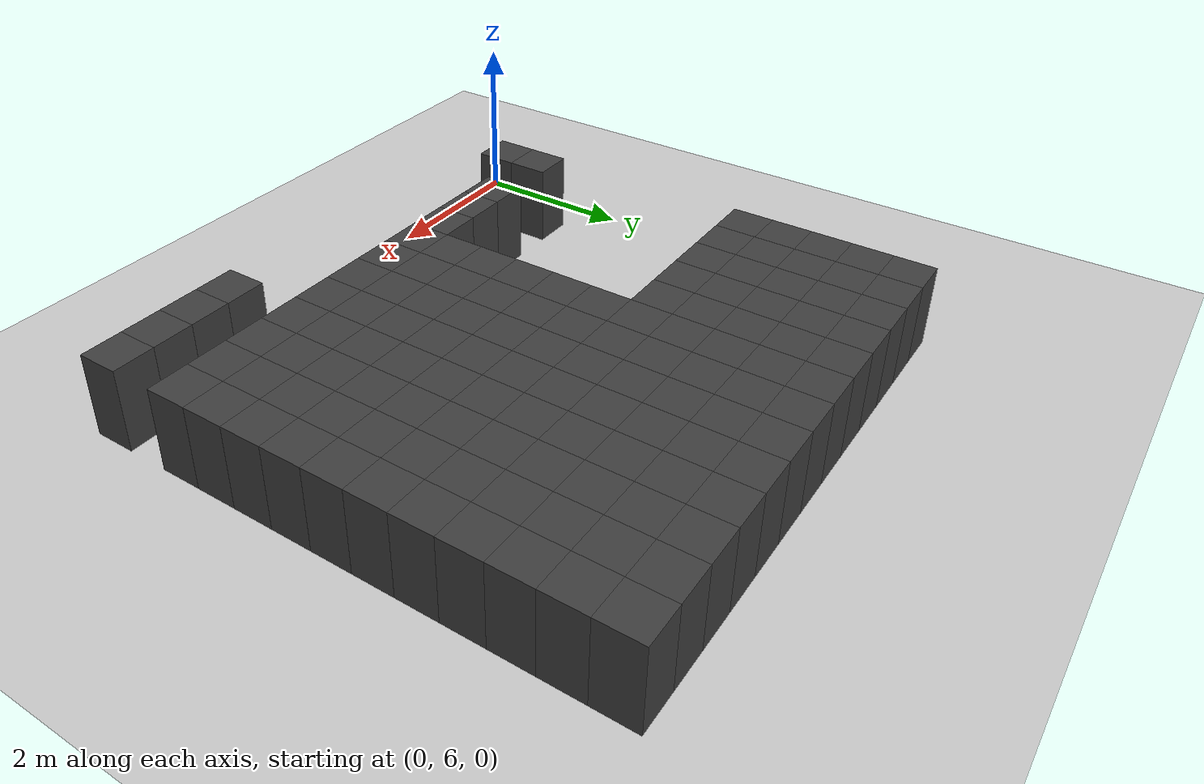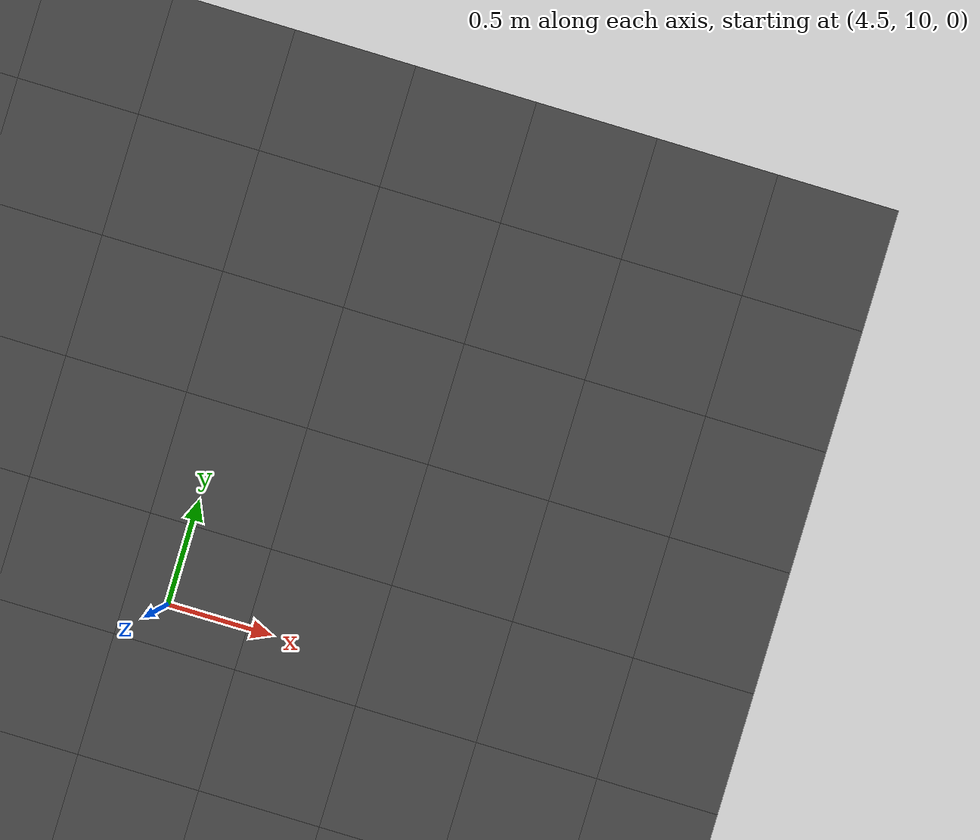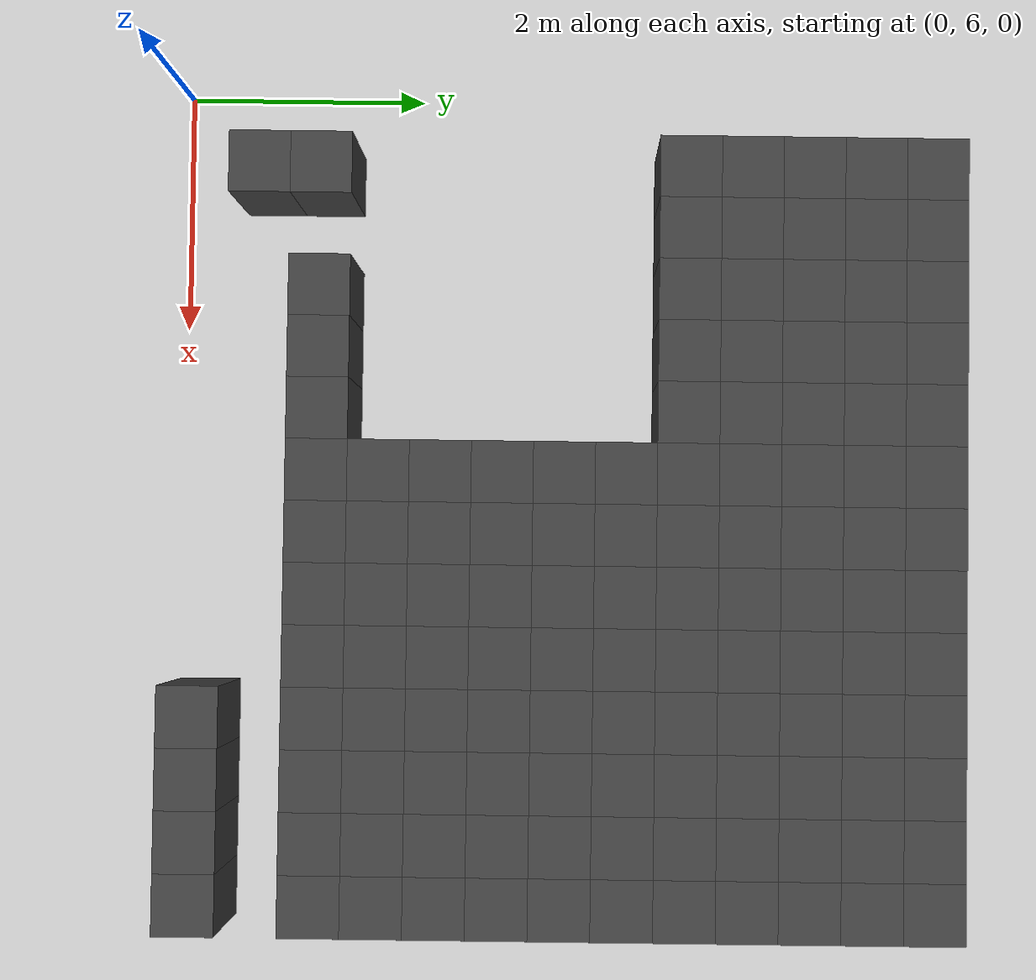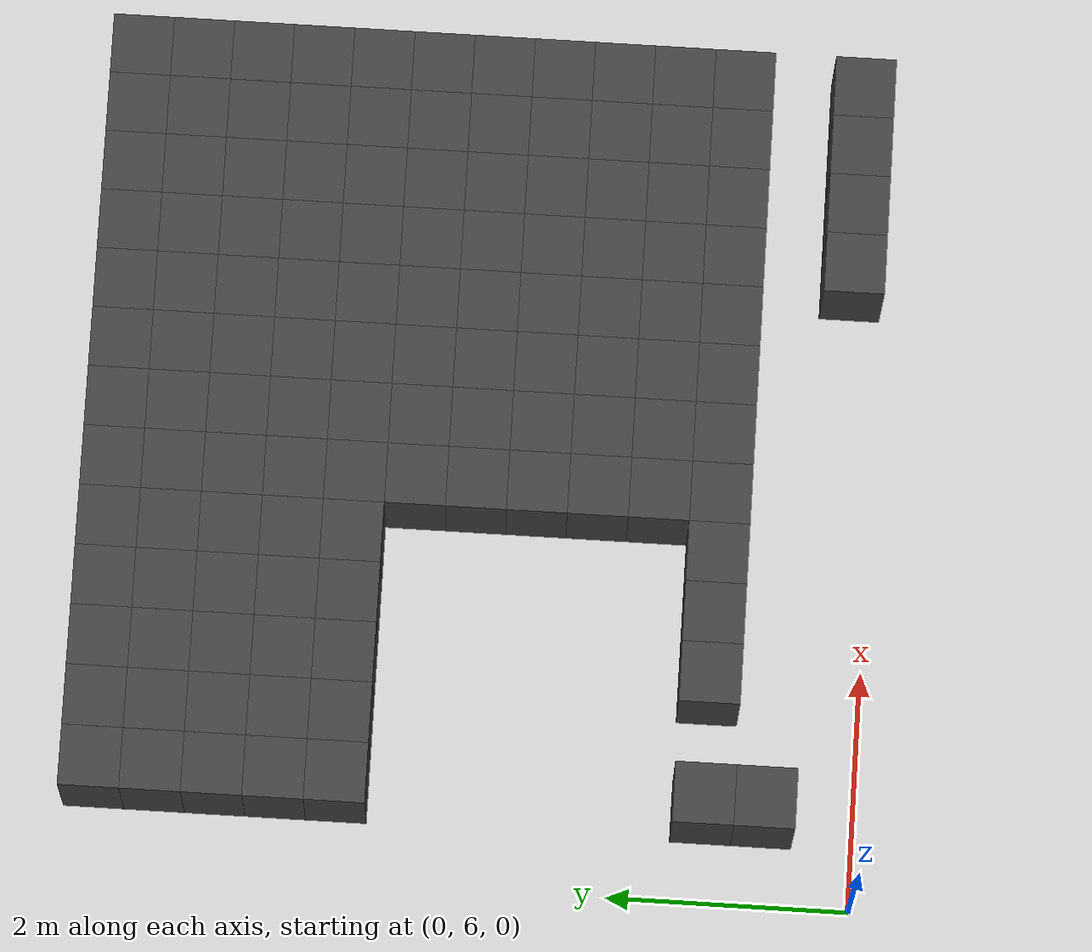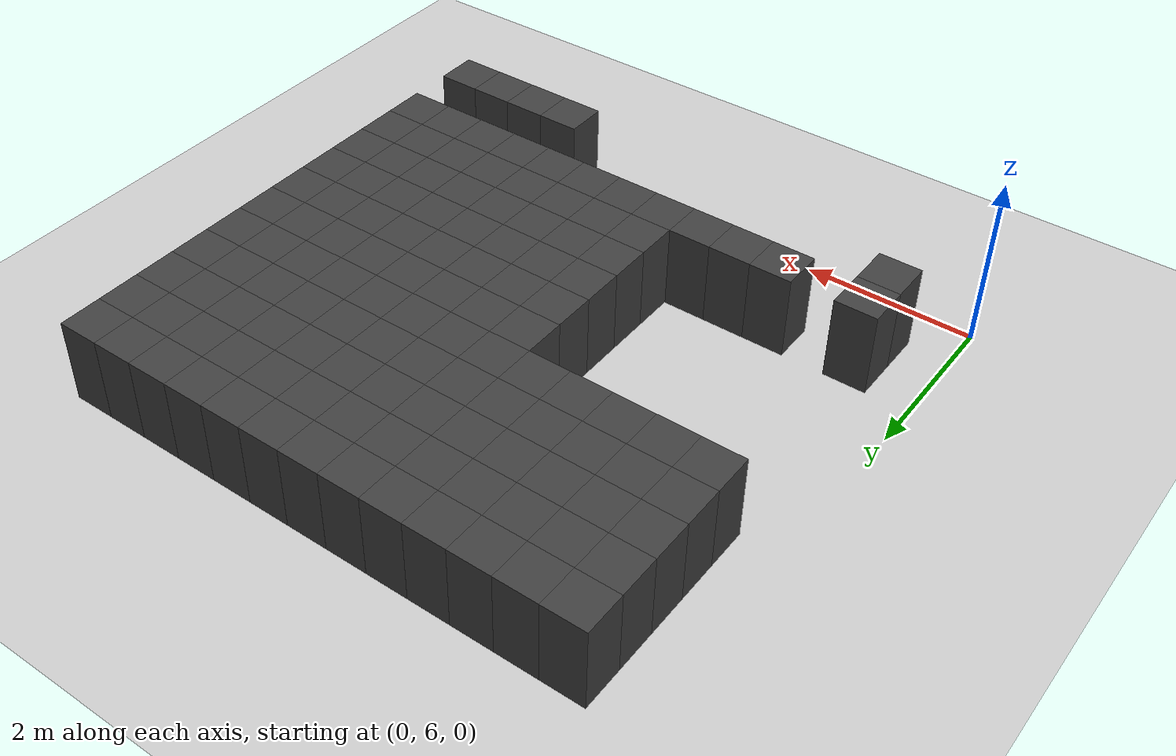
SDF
<sdf version="1.7">
 <world name="map_14510">
  <model name="ground_plane">
   <static>true</static>
   <link name="link">
    <collision name="collision">
     <geometry><plane><normal>0 0 1</normal><size>200 200</size></plane></geometry>
    </collision>
    <visual name="visual">
     <geometry><plane><normal>0 0 1</normal><size>200 200</size></plane></geometry>
     <material><ambient>0.8 0.8 0.8 1</ambient><diffuse>0.8 0.8 0.8 1</diffuse></material>
    </visual>
   </link>
  </model>
  <model name="maze_environment">
   <static>true</static>
   <link name="wall_26">
    <pose>0.750 12.250 0.500 0 0 0</pose>
    <collision name="col"><geometry><box><size>0.5 0.5 1.0</size></box></geometry></collision>
    <visual name="vis">
     <geometry><box><size>0.5 0.5 1.0</size></box></geometry>
     <material><ambient>0.15 0.15 0.15 1</ambient><diffuse>0.25 0.25 0.25 1</diffuse></material>
    </visual>
   </link>
   <link name="wall_27">
    <pose>1.250 12.250 0.500 0 0 0</pose>
    <collision name="col"><geometry><box><size>0.5 0.5 1.0</size></box></geometry></collision>
    <visual name="vis">
     <geometry><box><size>0.5 0.5 1.0</size></box></geometry>
     <material><ambient>0.15 0.15 0.15 1</ambient><diffuse>0.25 0.25 0.25 1</diffuse></material>
    </visual>
   </link>
   <link name="wall_28">
    <pose>1.750 12.250 0.500 0 0 0</pose>
    <collision name="col"><geometry><box><size>0.5 0.5 1.0</size></box></geometry></collision>
    <visual name="vis">
     <geometry><box><size>0.5 0.5 1.0</size></box></geometry>
     <material><ambient>0.15 0.15 0.15 1</ambient><diffuse>0.25 0.25 0.25 1</diffuse></material>
    </visual>
   </link>
   <link name="wall_29">
    <pose>2.250 12.250 0.500 0 0 0</pose>
    <collision name="col"><geometry><box><size>0.5 0.5 1.0</size></box></geometry></collision>
    <visual name="vis">
     <geometry><box><size>0.5 0.5 1.0</size></box></geometry>
     <material><ambient>0.15 0.15 0.15 1</ambient><diffuse>0.25 0.25 0.25 1</diffuse></material>
    </visual>
   </link>
   <link name="wall_30">
    <pose>2.750 12.250 0.500 0 0 0</pose>
    <collision name="col"><geometry><box><size>0.5 0.5 1.0</size></box></geometry></collision>
    <visual name="vis">
     <geometry><box><size>0.5 0.5 1.0</size></box></geometry>
     <material><ambient>0.15 0.15 0.15 1</ambient><diffuse>0.25 0.25 0.25 1</diffuse></material>
    </visual>
   </link>
   <link name="wall_31">
    <pose>3.250 12.250 0.500 0 0 0</pose>
    <collision name="col"><geometry><box><size>0.5 0.5 1.0</size></box></geometry></collision>
    <visual name="vis">
     <geometry><box><size>0.5 0.5 1.0</size></box></geometry>
     <material><ambient>0.15 0.15 0.15 1</ambient><diffuse>0.25 0.25 0.25 1</diffuse></material>
    </visual>
   </link>
   <link name="wall_32">
    <pose>3.750 12.250 0.500 0 0 0</pose>
    <collision name="col"><geometry><box><size>0.5 0.5 1.0</size></box></geometry></collision>
    <visual name="vis">
     <geometry><box><size>0.5 0.5 1.0</size></box></geometry>
     <material><ambient>0.15 0.15 0.15 1</ambient><diffuse>0.25 0.25 0.25 1</diffuse></material>
    </visual>
   </link>
   <link name="wall_33">
    <pose>4.250 12.250 0.500 0 0 0</pose>
    <collision name="col"><geometry><box><size>0.5 0.5 1.0</size></box></geometry></collision>
    <visual name="vis">
     <geometry><box><size>0.5 0.5 1.0</size></box></geometry>
     <material><ambient>0.15 0.15 0.15 1</ambient><diffuse>0.25 0.25 0.25 1</diffuse></material>
    </visual>
   </link>
   <link name="wall_34">
    <pose>4.750 12.250 0.500 0 0 0</pose>
    <collision name="col"><geometry><box><size>0.5 0.5 1.0</size></box></geometry></collision>
    <visual name="vis">
     <geometry><box><size>0.5 0.5 1.0</size></box></geometry>
     <material><ambient>0.15 0.15 0.15 1</ambient><diffuse>0.25 0.25 0.25 1</diffuse></material>
    </visual>
   </link>
   <link name="wall_35">
    <pose>5.250 12.250 0.500 0 0 0</pose>
    <collision name="col"><geometry><box><size>0.5 0.5 1.0</size></box></geometry></collision>
    <visual name="vis">
     <geometry><box><size>0.5 0.5 1.0</size></box></geometry>
     <material><ambient>0.15 0.15 0.15 1</ambient><diffuse>0.25 0.25 0.25 1</diffuse></material>
    </visual>
   </link>
   <link name="wall_36">
    <pose>5.750 12.250 0.500 0 0 0</pose>
    <collision name="col"><geometry><box><size>0.5 0.5 1.0</size></box></geometry></collision>
    <visual name="vis">
     <geometry><box><size>0.5 0.5 1.0</size></box></geometry>
     <material><ambient>0.15 0.15 0.15 1</ambient><diffuse>0.25 0.25 0.25 1</diffuse></material>
    </visual>
   </link>
   <link name="wall_37">
    <pose>6.250 12.250 0.500 0 0 0</pose>
    <collision name="col"><geometry><box><size>0.5 0.5 1.0</size></box></geometry></collision>
    <visual name="vis">
     <geometry><box><size>0.5 0.5 1.0</size></box></geometry>
     <material><ambient>0.15 0.15 0.15 1</ambient><diffuse>0.25 0.25 0.25 1</diffuse></material>
    </visual>
   </link>
   <link name="wall_38">
    <pose>6.750 12.250 0.500 0 0 0</pose>
    <collision name="col"><geometry><box><size>0.5 0.5 1.0</size></box></geometry></collision>
    <visual name="vis">
     <geometry><box><size>0.5 0.5 1.0</size></box></geometry>
     <material><ambient>0.15 0.15 0.15 1</ambient><diffuse>0.25 0.25 0.25 1</diffuse></material>
    </visual>
   </link>
   <link name="wall_73">
    <pose>0.750 11.750 0.500 0 0 0</pose>
    <collision name="col"><geometry><box><size>0.5 0.5 1.0</size></box></geometry></collision>
    <visual name="vis">
     <geometry><box><size>0.5 0.5 1.0</size></box></geometry>
     <material><ambient>0.15 0.15 0.15 1</ambient><diffuse>0.25 0.25 0.25 1</diffuse></material>
    </visual>
   </link>
   <link name="wall_74">
    <pose>1.250 11.750 0.500 0 0 0</pose>
    <collision name="col"><geometry><box><size>0.5 0.5 1.0</size></box></geometry></collision>
    <visual name="vis">
     <geometry><box><size>0.5 0.5 1.0</size></box></geometry>
     <material><ambient>0.15 0.15 0.15 1</ambient><diffuse>0.25 0.25 0.25 1</diffuse></material>
    </visual>
   </link>
   <link name="wall_75">
    <pose>1.750 11.750 0.500 0 0 0</pose>
    <collision name="col"><geometry><box><size>0.5 0.5 1.0</size></box></geometry></collision>
    <visual name="vis">
     <geometry><box><size>0.5 0.5 1.0</size></box></geometry>
     <material><ambient>0.15 0.15 0.15 1</ambient><diffuse>0.25 0.25 0.25 1</diffuse></material>
    </visual>
   </link>
   <link name="wall_76">
    <pose>2.250 11.750 0.500 0 0 0</pose>
    <collision name="col"><geometry><box><size>0.5 0.5 1.0</size></box></geometry></collision>
    <visual name="vis">
     <geometry><box><size>0.5 0.5 1.0</size></box></geometry>
     <material><ambient>0.15 0.15 0.15 1</ambient><diffuse>0.25 0.25 0.25 1</diffuse></material>
    </visual>
   </link>
   <link name="wall_77">
    <pose>2.750 11.750 0.500 0 0 0</pose>
    <collision name="col"><geometry><box><size>0.5 0.5 1.0</size></box></geometry></collision>
    <visual name="vis">
     <geometry><box><size>0.5 0.5 1.0</size></box></geometry>
     <material><ambient>0.15 0.15 0.15 1</ambient><diffuse>0.25 0.25 0.25 1</diffuse></material>
    </visual>
   </link>
   <link name="wall_78">
    <pose>3.250 11.750 0.500 0 0 0</pose>
    <collision name="col"><geometry><box><size>0.5 0.5 1.0</size></box></geometry></collision>
    <visual name="vis">
     <geometry><box><size>0.5 0.5 1.0</size></box></geometry>
     <material><ambient>0.15 0.15 0.15 1</ambient><diffuse>0.25 0.25 0.25 1</diffuse></material>
    </visual>
   </link>
   <link name="wall_79">
    <pose>3.750 11.750 0.500 0 0 0</pose>
    <collision name="col"><geometry><box><size>0.5 0.5 1.0</size></box></geometry></collision>
    <visual name="vis">
     <geometry><box><size>0.5 0.5 1.0</size></box></geometry>
     <material><ambient>0.15 0.15 0.15 1</ambient><diffuse>0.25 0.25 0.25 1</diffuse></material>
    </visual>
   </link>
   <link name="wall_80">
    <pose>4.250 11.750 0.500 0 0 0</pose>
    <collision name="col"><geometry><box><size>0.5 0.5 1.0</size></box></geometry></collision>
    <visual name="vis">
     <geometry><box><size>0.5 0.5 1.0</size></box></geometry>
     <material><ambient>0.15 0.15 0.15 1</ambient><diffuse>0.25 0.25 0.25 1</diffuse></material>
    </visual>
   </link>
   <link name="wall_81">
    <pose>4.750 11.750 0.500 0 0 0</pose>
    <collision name="col"><geometry><box><size>0.5 0.5 1.0</size></box></geometry></collision>
    <visual name="vis">
     <geometry><box><size>0.5 0.5 1.0</size></box></geometry>
     <material><ambient>0.15 0.15 0.15 1</ambient><diffuse>0.25 0.25 0.25 1</diffuse></material>
    </visual>
   </link>
   <link name="wall_82">
    <pose>5.250 11.750 0.500 0 0 0</pose>
    <collision name="col"><geometry><box><size>0.5 0.5 1.0</size></box></geometry></collision>
    <visual name="vis">
     <geometry><box><size>0.5 0.5 1.0</size></box></geometry>
     <material><ambient>0.15 0.15 0.15 1</ambient><diffuse>0.25 0.25 0.25 1</diffuse></material>
    </visual>
   </link>
   <link name="wall_83">
    <pose>5.750 11.750 0.500 0 0 0</pose>
    <collision name="col"><geometry><box><size>0.5 0.5 1.0</size></box></geometry></collision>
    <visual name="vis">
     <geometry><box><size>0.5 0.5 1.0</size></box></geometry>
     <material><ambient>0.15 0.15 0.15 1</ambient><diffuse>0.25 0.25 0.25 1</diffuse></material>
    </visual>
   </link>
   <link name="wall_84">
    <pose>6.250 11.750 0.500 0 0 0</pose>
    <collision name="col"><geometry><box><size>0.5 0.5 1.0</size></box></geometry></collision>
    <visual name="vis">
     <geometry><box><size>0.5 0.5 1.0</size></box></geometry>
     <material><ambient>0.15 0.15 0.15 1</ambient><diffuse>0.25 0.25 0.25 1</diffuse></material>
    </visual>
   </link>
   <link name="wall_85">
    <pose>6.750 11.750 0.500 0 0 0</pose>
    <collision name="col"><geometry><box><size>0.5 0.5 1.0</size></box></geometry></collision>
    <visual name="vis">
     <geometry><box><size>0.5 0.5 1.0</size></box></geometry>
     <material><ambient>0.15 0.15 0.15 1</ambient><diffuse>0.25 0.25 0.25 1</diffuse></material>
    </visual>
   </link>
   <link name="wall_120">
    <pose>0.750 11.250 0.500 0 0 0</pose>
    <collision name="col"><geometry><box><size>0.5 0.5 1.0</size></box></geometry></collision>
    <visual name="vis">
     <geometry><box><size>0.5 0.5 1.0</size></box></geometry>
     <material><ambient>0.15 0.15 0.15 1</ambient><diffuse>0.25 0.25 0.25 1</diffuse></material>
    </visual>
   </link>
   <link name="wall_121">
    <pose>1.250 11.250 0.500 0 0 0</pose>
    <collision name="col"><geometry><box><size>0.5 0.5 1.0</size></box></geometry></collision>
    <visual name="vis">
     <geometry><box><size>0.5 0.5 1.0</size></box></geometry>
     <material><ambient>0.15 0.15 0.15 1</ambient><diffuse>0.25 0.25 0.25 1</diffuse></material>
    </visual>
   </link>
   <link name="wall_122">
    <pose>1.750 11.250 0.500 0 0 0</pose>
    <collision name="col"><geometry><box><size>0.5 0.5 1.0</size></box></geometry></collision>
    <visual name="vis">
     <geometry><box><size>0.5 0.5 1.0</size></box></geometry>
     <material><ambient>0.15 0.15 0.15 1</ambient><diffuse>0.25 0.25 0.25 1</diffuse></material>
    </visual>
   </link>
   <link name="wall_123">
    <pose>2.250 11.250 0.500 0 0 0</pose>
    <collision name="col"><geometry><box><size>0.5 0.5 1.0</size></box></geometry></collision>
    <visual name="vis">
     <geometry><box><size>0.5 0.5 1.0</size></box></geometry>
     <material><ambient>0.15 0.15 0.15 1</ambient><diffuse>0.25 0.25 0.25 1</diffuse></material>
    </visual>
   </link>
   <link name="wall_124">
    <pose>2.750 11.250 0.500 0 0 0</pose>
    <collision name="col"><geometry><box><size>0.5 0.5 1.0</size></box></geometry></collision>
    <visual name="vis">
     <geometry><box><size>0.5 0.5 1.0</size></box></geometry>
     <material><ambient>0.15 0.15 0.15 1</ambient><diffuse>0.25 0.25 0.25 1</diffuse></material>
    </visual>
   </link>
   <link name="wall_125">
    <pose>3.250 11.250 0.500 0 0 0</pose>
    <collision name="col"><geometry><box><size>0.5 0.5 1.0</size></box></geometry></collision>
    <visual name="vis">
     <geometry><box><size>0.5 0.5 1.0</size></box></geometry>
     <material><ambient>0.15 0.15 0.15 1</ambient><diffuse>0.25 0.25 0.25 1</diffuse></material>
    </visual>
   </link>
   <link name="wall_126">
    <pose>3.750 11.250 0.500 0 0 0</pose>
    <collision name="col"><geometry><box><size>0.5 0.5 1.0</size></box></geometry></collision>
    <visual name="vis">
     <geometry><box><size>0.5 0.5 1.0</size></box></geometry>
     <material><ambient>0.15 0.15 0.15 1</ambient><diffuse>0.25 0.25 0.25 1</diffuse></material>
    </visual>
   </link>
   <link name="wall_127">
    <pose>4.250 11.250 0.500 0 0 0</pose>
    <collision name="col"><geometry><box><size>0.5 0.5 1.0</size></box></geometry></collision>
    <visual name="vis">
     <geometry><box><size>0.5 0.5 1.0</size></box></geometry>
     <material><ambient>0.15 0.15 0.15 1</ambient><diffuse>0.25 0.25 0.25 1</diffuse></material>
    </visual>
   </link>
   <link name="wall_128">
    <pose>4.750 11.250 0.500 0 0 0</pose>
    <collision name="col"><geometry><box><size>0.5 0.5 1.0</size></box></geometry></collision>
    <visual name="vis">
     <geometry><box><size>0.5 0.5 1.0</size></box></geometry>
     <material><ambient>0.15 0.15 0.15 1</ambient><diffuse>0.25 0.25 0.25 1</diffuse></material>
    </visual>
   </link>
   <link name="wall_129">
    <pose>5.250 11.250 0.500 0 0 0</pose>
    <collision name="col"><geometry><box><size>0.5 0.5 1.0</size></box></geometry></collision>
    <visual name="vis">
     <geometry><box><size>0.5 0.5 1.0</size></box></geometry>
     <material><ambient>0.15 0.15 0.15 1</ambient><diffuse>0.25 0.25 0.25 1</diffuse></material>
    </visual>
   </link>
   <link name="wall_130">
    <pose>5.750 11.250 0.500 0 0 0</pose>
    <collision name="col"><geometry><box><size>0.5 0.5 1.0</size></box></geometry></collision>
    <visual name="vis">
     <geometry><box><size>0.5 0.5 1.0</size></box></geometry>
     <material><ambient>0.15 0.15 0.15 1</ambient><diffuse>0.25 0.25 0.25 1</diffuse></material>
    </visual>
   </link>
   <link name="wall_131">
    <pose>6.250 11.250 0.500 0 0 0</pose>
    <collision name="col"><geometry><box><size>0.5 0.5 1.0</size></box></geometry></collision>
    <visual name="vis">
     <geometry><box><size>0.5 0.5 1.0</size></box></geometry>
     <material><ambient>0.15 0.15 0.15 1</ambient><diffuse>0.25 0.25 0.25 1</diffuse></material>
    </visual>
   </link>
   <link name="wall_132">
    <pose>6.750 11.250 0.500 0 0 0</pose>
    <collision name="col"><geometry><box><size>0.5 0.5 1.0</size></box></geometry></collision>
    <visual name="vis">
     <geometry><box><size>0.5 0.5 1.0</size></box></geometry>
     <material><ambient>0.15 0.15 0.15 1</ambient><diffuse>0.25 0.25 0.25 1</diffuse></material>
    </visual>
   </link>
   <link name="wall_157">
    <pose>0.750 10.750 0.500 0 0 0</pose>
    <collision name="col"><geometry><box><size>0.5 0.5 1.0</size></box></geometry></collision>
    <visual name="vis">
     <geometry><box><size>0.5 0.5 1.0</size></box></geometry>
     <material><ambient>0.15 0.15 0.15 1</ambient><diffuse>0.25 0.25 0.25 1</diffuse></material>
    </visual>
   </link>
   <link name="wall_158">
    <pose>1.250 10.750 0.500 0 0 0</pose>
    <collision name="col"><geometry><box><size>0.5 0.5 1.0</size></box></geometry></collision>
    <visual name="vis">
     <geometry><box><size>0.5 0.5 1.0</size></box></geometry>
     <material><ambient>0.15 0.15 0.15 1</ambient><diffuse>0.25 0.25 0.25 1</diffuse></material>
    </visual>
   </link>
   <link name="wall_159">
    <pose>1.750 10.750 0.500 0 0 0</pose>
    <collision name="col"><geometry><box><size>0.5 0.5 1.0</size></box></geometry></collision>
    <visual name="vis">
     <geometry><box><size>0.5 0.5 1.0</size></box></geometry>
     <material><ambient>0.15 0.15 0.15 1</ambient><diffuse>0.25 0.25 0.25 1</diffuse></material>
    </visual>
   </link>
   <link name="wall_160">
    <pose>2.250 10.750 0.500 0 0 0</pose>
    <collision name="col"><geometry><box><size>0.5 0.5 1.0</size></box></geometry></collision>
    <visual name="vis">
     <geometry><box><size>0.5 0.5 1.0</size></box></geometry>
     <material><ambient>0.15 0.15 0.15 1</ambient><diffuse>0.25 0.25 0.25 1</diffuse></material>
    </visual>
   </link>
   <link name="wall_161">
    <pose>2.750 10.750 0.500 0 0 0</pose>
    <collision name="col"><geometry><box><size>0.5 0.5 1.0</size></box></geometry></collision>
    <visual name="vis">
     <geometry><box><size>0.5 0.5 1.0</size></box></geometry>
     <material><ambient>0.15 0.15 0.15 1</ambient><diffuse>0.25 0.25 0.25 1</diffuse></material>
    </visual>
   </link>
   <link name="wall_162">
    <pose>3.250 10.750 0.500 0 0 0</pose>
    <collision name="col"><geometry><box><size>0.5 0.5 1.0</size></box></geometry></collision>
    <visual name="vis">
     <geometry><box><size>0.5 0.5 1.0</size></box></geometry>
     <material><ambient>0.15 0.15 0.15 1</ambient><diffuse>0.25 0.25 0.25 1</diffuse></material>
    </visual>
   </link>
   <link name="wall_163">
    <pose>3.750 10.750 0.500 0 0 0</pose>
    <collision name="col"><geometry><box><size>0.5 0.5 1.0</size></box></geometry></collision>
    <visual name="vis">
     <geometry><box><size>0.5 0.5 1.0</size></box></geometry>
     <material><ambient>0.15 0.15 0.15 1</ambient><diffuse>0.25 0.25 0.25 1</diffuse></material>
    </visual>
   </link>
   <link name="wall_164">
    <pose>4.250 10.750 0.500 0 0 0</pose>
    <collision name="col"><geometry><box><size>0.5 0.5 1.0</size></box></geometry></collision>
    <visual name="vis">
     <geometry><box><size>0.5 0.5 1.0</size></box></geometry>
     <material><ambient>0.15 0.15 0.15 1</ambient><diffuse>0.25 0.25 0.25 1</diffuse></material>
    </visual>
   </link>
   <link name="wall_165">
    <pose>4.750 10.750 0.500 0 0 0</pose>
    <collision name="col"><geometry><box><size>0.5 0.5 1.0</size></box></geometry></collision>
    <visual name="vis">
     <geometry><box><size>0.5 0.5 1.0</size></box></geometry>
     <material><ambient>0.15 0.15 0.15 1</ambient><diffuse>0.25 0.25 0.25 1</diffuse></material>
    </visual>
   </link>
   <link name="wall_166">
    <pose>5.250 10.750 0.500 0 0 0</pose>
    <collision name="col"><geometry><box><size>0.5 0.5 1.0</size></box></geometry></collision>
    <visual name="vis">
     <geometry><box><size>0.5 0.5 1.0</size></box></geometry>
     <material><ambient>0.15 0.15 0.15 1</ambient><diffuse>0.25 0.25 0.25 1</diffuse></material>
    </visual>
   </link>
   <link name="wall_167">
    <pose>5.750 10.750 0.500 0 0 0</pose>
    <collision name="col"><geometry><box><size>0.5 0.5 1.0</size></box></geometry></collision>
    <visual name="vis">
     <geometry><box><size>0.5 0.5 1.0</size></box></geometry>
     <material><ambient>0.15 0.15 0.15 1</ambient><diffuse>0.25 0.25 0.25 1</diffuse></material>
    </visual>
   </link>
   <link name="wall_168">
    <pose>6.250 10.750 0.500 0 0 0</pose>
    <collision name="col"><geometry><box><size>0.5 0.5 1.0</size></box></geometry></collision>
    <visual name="vis">
     <geometry><box><size>0.5 0.5 1.0</size></box></geometry>
     <material><ambient>0.15 0.15 0.15 1</ambient><diffuse>0.25 0.25 0.25 1</diffuse></material>
    </visual>
   </link>
   <link name="wall_169">
    <pose>6.750 10.750 0.500 0 0 0</pose>
    <collision name="col"><geometry><box><size>0.5 0.5 1.0</size></box></geometry></collision>
    <visual name="vis">
     <geometry><box><size>0.5 0.5 1.0</size></box></geometry>
     <material><ambient>0.15 0.15 0.15 1</ambient><diffuse>0.25 0.25 0.25 1</diffuse></material>
    </visual>
   </link>
   <link name="wall_196">
    <pose>0.750 10.250 0.500 0 0 0</pose>
    <collision name="col"><geometry><box><size>0.5 0.5 1.0</size></box></geometry></collision>
    <visual name="vis">
     <geometry><box><size>0.5 0.5 1.0</size></box></geometry>
     <material><ambient>0.15 0.15 0.15 1</ambient><diffuse>0.25 0.25 0.25 1</diffuse></material>
    </visual>
   </link>
   <link name="wall_197">
    <pose>1.250 10.250 0.500 0 0 0</pose>
    <collision name="col"><geometry><box><size>0.5 0.5 1.0</size></box></geometry></collision>
    <visual name="vis">
     <geometry><box><size>0.5 0.5 1.0</size></box></geometry>
     <material><ambient>0.15 0.15 0.15 1</ambient><diffuse>0.25 0.25 0.25 1</diffuse></material>
    </visual>
   </link>
   <link name="wall_198">
    <pose>1.750 10.250 0.500 0 0 0</pose>
    <collision name="col"><geometry><box><size>0.5 0.5 1.0</size></box></geometry></collision>
    <visual name="vis">
     <geometry><box><size>0.5 0.5 1.0</size></box></geometry>
     <material><ambient>0.15 0.15 0.15 1</ambient><diffuse>0.25 0.25 0.25 1</diffuse></material>
    </visual>
   </link>
   <link name="wall_199">
    <pose>2.250 10.250 0.500 0 0 0</pose>
    <collision name="col"><geometry><box><size>0.5 0.5 1.0</size></box></geometry></collision>
    <visual name="vis">
     <geometry><box><size>0.5 0.5 1.0</size></box></geometry>
     <material><ambient>0.15 0.15 0.15 1</ambient><diffuse>0.25 0.25 0.25 1</diffuse></material>
    </visual>
   </link>
   <link name="wall_200">
    <pose>2.750 10.250 0.500 0 0 0</pose>
    <collision name="col"><geometry><box><size>0.5 0.5 1.0</size></box></geometry></collision>
    <visual name="vis">
     <geometry><box><size>0.5 0.5 1.0</size></box></geometry>
     <material><ambient>0.15 0.15 0.15 1</ambient><diffuse>0.25 0.25 0.25 1</diffuse></material>
    </visual>
   </link>
   <link name="wall_201">
    <pose>3.250 10.250 0.500 0 0 0</pose>
    <collision name="col"><geometry><box><size>0.5 0.5 1.0</size></box></geometry></collision>
    <visual name="vis">
     <geometry><box><size>0.5 0.5 1.0</size></box></geometry>
     <material><ambient>0.15 0.15 0.15 1</ambient><diffuse>0.25 0.25 0.25 1</diffuse></material>
    </visual>
   </link>
   <link name="wall_202">
    <pose>3.750 10.250 0.500 0 0 0</pose>
    <collision name="col"><geometry><box><size>0.5 0.5 1.0</size></box></geometry></collision>
    <visual name="vis">
     <geometry><box><size>0.5 0.5 1.0</size></box></geometry>
     <material><ambient>0.15 0.15 0.15 1</ambient><diffuse>0.25 0.25 0.25 1</diffuse></material>
    </visual>
   </link>
   <link name="wall_203">
    <pose>4.250 10.250 0.500 0 0 0</pose>
    <collision name="col"><geometry><box><size>0.5 0.5 1.0</size></box></geometry></collision>
    <visual name="vis">
     <geometry><box><size>0.5 0.5 1.0</size></box></geometry>
     <material><ambient>0.15 0.15 0.15 1</ambient><diffuse>0.25 0.25 0.25 1</diffuse></material>
    </visual>
   </link>
   <link name="wall_204">
    <pose>4.750 10.250 0.500 0 0 0</pose>
    <collision name="col"><geometry><box><size>0.5 0.5 1.0</size></box></geometry></collision>
    <visual name="vis">
     <geometry><box><size>0.5 0.5 1.0</size></box></geometry>
     <material><ambient>0.15 0.15 0.15 1</ambient><diffuse>0.25 0.25 0.25 1</diffuse></material>
    </visual>
   </link>
   <link name="wall_205">
    <pose>5.250 10.250 0.500 0 0 0</pose>
    <collision name="col"><geometry><box><size>0.5 0.5 1.0</size></box></geometry></collision>
    <visual name="vis">
     <geometry><box><size>0.5 0.5 1.0</size></box></geometry>
     <material><ambient>0.15 0.15 0.15 1</ambient><diffuse>0.25 0.25 0.25 1</diffuse></material>
    </visual>
   </link>
   <link name="wall_206">
    <pose>5.750 10.250 0.500 0 0 0</pose>
    <collision name="col"><geometry><box><size>0.5 0.5 1.0</size></box></geometry></collision>
    <visual name="vis">
     <geometry><box><size>0.5 0.5 1.0</size></box></geometry>
     <material><ambient>0.15 0.15 0.15 1</ambient><diffuse>0.25 0.25 0.25 1</diffuse></material>
    </visual>
   </link>
   <link name="wall_207">
    <pose>6.250 10.250 0.500 0 0 0</pose>
    <collision name="col"><geometry><box><size>0.5 0.5 1.0</size></box></geometry></collision>
    <visual name="vis">
     <geometry><box><size>0.5 0.5 1.0</size></box></geometry>
     <material><ambient>0.15 0.15 0.15 1</ambient><diffuse>0.25 0.25 0.25 1</diffuse></material>
    </visual>
   </link>
   <link name="wall_208">
    <pose>6.750 10.250 0.500 0 0 0</pose>
    <collision name="col"><geometry><box><size>0.5 0.5 1.0</size></box></geometry></collision>
    <visual name="vis">
     <geometry><box><size>0.5 0.5 1.0</size></box></geometry>
     <material><ambient>0.15 0.15 0.15 1</ambient><diffuse>0.25 0.25 0.25 1</diffuse></material>
    </visual>
   </link>
   <link name="wall_233">
    <pose>3.250 9.750 0.500 0 0 0</pose>
    <collision name="col"><geometry><box><size>0.5 0.5 1.0</size></box></geometry></collision>
    <visual name="vis">
     <geometry><box><size>0.5 0.5 1.0</size></box></geometry>
     <material><ambient>0.15 0.15 0.15 1</ambient><diffuse>0.25 0.25 0.25 1</diffuse></material>
    </visual>
   </link>
   <link name="wall_234">
    <pose>3.750 9.750 0.500 0 0 0</pose>
    <collision name="col"><geometry><box><size>0.5 0.5 1.0</size></box></geometry></collision>
    <visual name="vis">
     <geometry><box><size>0.5 0.5 1.0</size></box></geometry>
     <material><ambient>0.15 0.15 0.15 1</ambient><diffuse>0.25 0.25 0.25 1</diffuse></material>
    </visual>
   </link>
   <link name="wall_235">
    <pose>4.250 9.750 0.500 0 0 0</pose>
    <collision name="col"><geometry><box><size>0.5 0.5 1.0</size></box></geometry></collision>
    <visual name="vis">
     <geometry><box><size>0.5 0.5 1.0</size></box></geometry>
     <material><ambient>0.15 0.15 0.15 1</ambient><diffuse>0.25 0.25 0.25 1</diffuse></material>
    </visual>
   </link>
   <link name="wall_236">
    <pose>4.750 9.750 0.500 0 0 0</pose>
    <collision name="col"><geometry><box><size>0.5 0.5 1.0</size></box></geometry></collision>
    <visual name="vis">
     <geometry><box><size>0.5 0.5 1.0</size></box></geometry>
     <material><ambient>0.15 0.15 0.15 1</ambient><diffuse>0.25 0.25 0.25 1</diffuse></material>
    </visual>
   </link>
   <link name="wall_237">
    <pose>5.250 9.750 0.500 0 0 0</pose>
    <collision name="col"><geometry><box><size>0.5 0.5 1.0</size></box></geometry></collision>
    <visual name="vis">
     <geometry><box><size>0.5 0.5 1.0</size></box></geometry>
     <material><ambient>0.15 0.15 0.15 1</ambient><diffuse>0.25 0.25 0.25 1</diffuse></material>
    </visual>
   </link>
   <link name="wall_238">
    <pose>5.750 9.750 0.500 0 0 0</pose>
    <collision name="col"><geometry><box><size>0.5 0.5 1.0</size></box></geometry></collision>
    <visual name="vis">
     <geometry><box><size>0.5 0.5 1.0</size></box></geometry>
     <material><ambient>0.15 0.15 0.15 1</ambient><diffuse>0.25 0.25 0.25 1</diffuse></material>
    </visual>
   </link>
   <link name="wall_239">
    <pose>6.250 9.750 0.500 0 0 0</pose>
    <collision name="col"><geometry><box><size>0.5 0.5 1.0</size></box></geometry></collision>
    <visual name="vis">
     <geometry><box><size>0.5 0.5 1.0</size></box></geometry>
     <material><ambient>0.15 0.15 0.15 1</ambient><diffuse>0.25 0.25 0.25 1</diffuse></material>
    </visual>
   </link>
   <link name="wall_240">
    <pose>6.750 9.750 0.500 0 0 0</pose>
    <collision name="col"><geometry><box><size>0.5 0.5 1.0</size></box></geometry></collision>
    <visual name="vis">
     <geometry><box><size>0.5 0.5 1.0</size></box></geometry>
     <material><ambient>0.15 0.15 0.15 1</ambient><diffuse>0.25 0.25 0.25 1</diffuse></material>
    </visual>
   </link>
   <link name="wall_254">
    <pose>3.250 9.250 0.500 0 0 0</pose>
    <collision name="col"><geometry><box><size>0.5 0.5 1.0</size></box></geometry></collision>
    <visual name="vis">
     <geometry><box><size>0.5 0.5 1.0</size></box></geometry>
     <material><ambient>0.15 0.15 0.15 1</ambient><diffuse>0.25 0.25 0.25 1</diffuse></material>
    </visual>
   </link>
   <link name="wall_255">
    <pose>3.750 9.250 0.500 0 0 0</pose>
    <collision name="col"><geometry><box><size>0.5 0.5 1.0</size></box></geometry></collision>
    <visual name="vis">
     <geometry><box><size>0.5 0.5 1.0</size></box></geometry>
     <material><ambient>0.15 0.15 0.15 1</ambient><diffuse>0.25 0.25 0.25 1</diffuse></material>
    </visual>
   </link>
   <link name="wall_256">
    <pose>4.250 9.250 0.500 0 0 0</pose>
    <collision name="col"><geometry><box><size>0.5 0.5 1.0</size></box></geometry></collision>
    <visual name="vis">
     <geometry><box><size>0.5 0.5 1.0</size></box></geometry>
     <material><ambient>0.15 0.15 0.15 1</ambient><diffuse>0.25 0.25 0.25 1</diffuse></material>
    </visual>
   </link>
   <link name="wall_257">
    <pose>4.750 9.250 0.500 0 0 0</pose>
    <collision name="col"><geometry><box><size>0.5 0.5 1.0</size></box></geometry></collision>
    <visual name="vis">
     <geometry><box><size>0.5 0.5 1.0</size></box></geometry>
     <material><ambient>0.15 0.15 0.15 1</ambient><diffuse>0.25 0.25 0.25 1</diffuse></material>
    </visual>
   </link>
   <link name="wall_258">
    <pose>5.250 9.250 0.500 0 0 0</pose>
    <collision name="col"><geometry><box><size>0.5 0.5 1.0</size></box></geometry></collision>
    <visual name="vis">
     <geometry><box><size>0.5 0.5 1.0</size></box></geometry>
     <material><ambient>0.15 0.15 0.15 1</ambient><diffuse>0.25 0.25 0.25 1</diffuse></material>
    </visual>
   </link>
   <link name="wall_259">
    <pose>5.750 9.250 0.500 0 0 0</pose>
    <collision name="col"><geometry><box><size>0.5 0.5 1.0</size></box></geometry></collision>
    <visual name="vis">
     <geometry><box><size>0.5 0.5 1.0</size></box></geometry>
     <material><ambient>0.15 0.15 0.15 1</ambient><diffuse>0.25 0.25 0.25 1</diffuse></material>
    </visual>
   </link>
   <link name="wall_260">
    <pose>6.250 9.250 0.500 0 0 0</pose>
    <collision name="col"><geometry><box><size>0.5 0.5 1.0</size></box></geometry></collision>
    <visual name="vis">
     <geometry><box><size>0.5 0.5 1.0</size></box></geometry>
     <material><ambient>0.15 0.15 0.15 1</ambient><diffuse>0.25 0.25 0.25 1</diffuse></material>
    </visual>
   </link>
   <link name="wall_261">
    <pose>6.750 9.250 0.500 0 0 0</pose>
    <collision name="col"><geometry><box><size>0.5 0.5 1.0</size></box></geometry></collision>
    <visual name="vis">
     <geometry><box><size>0.5 0.5 1.0</size></box></geometry>
     <material><ambient>0.15 0.15 0.15 1</ambient><diffuse>0.25 0.25 0.25 1</diffuse></material>
    </visual>
   </link>
   <link name="wall_287">
    <pose>3.250 8.750 0.500 0 0 0</pose>
    <collision name="col"><geometry><box><size>0.5 0.5 1.0</size></box></geometry></collision>
    <visual name="vis">
     <geometry><box><size>0.5 0.5 1.0</size></box></geometry>
     <material><ambient>0.15 0.15 0.15 1</ambient><diffuse>0.25 0.25 0.25 1</diffuse></material>
    </visual>
   </link>
   <link name="wall_288">
    <pose>3.750 8.750 0.500 0 0 0</pose>
    <collision name="col"><geometry><box><size>0.5 0.5 1.0</size></box></geometry></collision>
    <visual name="vis">
     <geometry><box><size>0.5 0.5 1.0</size></box></geometry>
     <material><ambient>0.15 0.15 0.15 1</ambient><diffuse>0.25 0.25 0.25 1</diffuse></material>
    </visual>
   </link>
   <link name="wall_289">
    <pose>4.250 8.750 0.500 0 0 0</pose>
    <collision name="col"><geometry><box><size>0.5 0.5 1.0</size></box></geometry></collision>
    <visual name="vis">
     <geometry><box><size>0.5 0.5 1.0</size></box></geometry>
     <material><ambient>0.15 0.15 0.15 1</ambient><diffuse>0.25 0.25 0.25 1</diffuse></material>
    </visual>
   </link>
   <link name="wall_290">
    <pose>4.750 8.750 0.500 0 0 0</pose>
    <collision name="col"><geometry><box><size>0.5 0.5 1.0</size></box></geometry></collision>
    <visual name="vis">
     <geometry><box><size>0.5 0.5 1.0</size></box></geometry>
     <material><ambient>0.15 0.15 0.15 1</ambient><diffuse>0.25 0.25 0.25 1</diffuse></material>
    </visual>
   </link>
   <link name="wall_291">
    <pose>5.250 8.750 0.500 0 0 0</pose>
    <collision name="col"><geometry><box><size>0.5 0.5 1.0</size></box></geometry></collision>
    <visual name="vis">
     <geometry><box><size>0.5 0.5 1.0</size></box></geometry>
     <material><ambient>0.15 0.15 0.15 1</ambient><diffuse>0.25 0.25 0.25 1</diffuse></material>
    </visual>
   </link>
   <link name="wall_292">
    <pose>5.750 8.750 0.500 0 0 0</pose>
    <collision name="col"><geometry><box><size>0.5 0.5 1.0</size></box></geometry></collision>
    <visual name="vis">
     <geometry><box><size>0.5 0.5 1.0</size></box></geometry>
     <material><ambient>0.15 0.15 0.15 1</ambient><diffuse>0.25 0.25 0.25 1</diffuse></material>
    </visual>
   </link>
   <link name="wall_293">
    <pose>6.250 8.750 0.500 0 0 0</pose>
    <collision name="col"><geometry><box><size>0.5 0.5 1.0</size></box></geometry></collision>
    <visual name="vis">
     <geometry><box><size>0.5 0.5 1.0</size></box></geometry>
     <material><ambient>0.15 0.15 0.15 1</ambient><diffuse>0.25 0.25 0.25 1</diffuse></material>
    </visual>
   </link>
   <link name="wall_294">
    <pose>6.750 8.750 0.500 0 0 0</pose>
    <collision name="col"><geometry><box><size>0.5 0.5 1.0</size></box></geometry></collision>
    <visual name="vis">
     <geometry><box><size>0.5 0.5 1.0</size></box></geometry>
     <material><ambient>0.15 0.15 0.15 1</ambient><diffuse>0.25 0.25 0.25 1</diffuse></material>
    </visual>
   </link>
   <link name="wall_320">
    <pose>3.250 8.250 0.500 0 0 0</pose>
    <collision name="col"><geometry><box><size>0.5 0.5 1.0</size></box></geometry></collision>
    <visual name="vis">
     <geometry><box><size>0.5 0.5 1.0</size></box></geometry>
     <material><ambient>0.15 0.15 0.15 1</ambient><diffuse>0.25 0.25 0.25 1</diffuse></material>
    </visual>
   </link>
   <link name="wall_321">
    <pose>3.750 8.250 0.500 0 0 0</pose>
    <collision name="col"><geometry><box><size>0.5 0.5 1.0</size></box></geometry></collision>
    <visual name="vis">
     <geometry><box><size>0.5 0.5 1.0</size></box></geometry>
     <material><ambient>0.15 0.15 0.15 1</ambient><diffuse>0.25 0.25 0.25 1</diffuse></material>
    </visual>
   </link>
   <link name="wall_322">
    <pose>4.250 8.250 0.500 0 0 0</pose>
    <collision name="col"><geometry><box><size>0.5 0.5 1.0</size></box></geometry></collision>
    <visual name="vis">
     <geometry><box><size>0.5 0.5 1.0</size></box></geometry>
     <material><ambient>0.15 0.15 0.15 1</ambient><diffuse>0.25 0.25 0.25 1</diffuse></material>
    </visual>
   </link>
   <link name="wall_323">
    <pose>4.750 8.250 0.500 0 0 0</pose>
    <collision name="col"><geometry><box><size>0.5 0.5 1.0</size></box></geometry></collision>
    <visual name="vis">
     <geometry><box><size>0.5 0.5 1.0</size></box></geometry>
     <material><ambient>0.15 0.15 0.15 1</ambient><diffuse>0.25 0.25 0.25 1</diffuse></material>
    </visual>
   </link>
   <link name="wall_324">
    <pose>5.250 8.250 0.500 0 0 0</pose>
    <collision name="col"><geometry><box><size>0.5 0.5 1.0</size></box></geometry></collision>
    <visual name="vis">
     <geometry><box><size>0.5 0.5 1.0</size></box></geometry>
     <material><ambient>0.15 0.15 0.15 1</ambient><diffuse>0.25 0.25 0.25 1</diffuse></material>
    </visual>
   </link>
   <link name="wall_325">
    <pose>5.750 8.250 0.500 0 0 0</pose>
    <collision name="col"><geometry><box><size>0.5 0.5 1.0</size></box></geometry></collision>
    <visual name="vis">
     <geometry><box><size>0.5 0.5 1.0</size></box></geometry>
     <material><ambient>0.15 0.15 0.15 1</ambient><diffuse>0.25 0.25 0.25 1</diffuse></material>
    </visual>
   </link>
   <link name="wall_326">
    <pose>6.250 8.250 0.500 0 0 0</pose>
    <collision name="col"><geometry><box><size>0.5 0.5 1.0</size></box></geometry></collision>
    <visual name="vis">
     <geometry><box><size>0.5 0.5 1.0</size></box></geometry>
     <material><ambient>0.15 0.15 0.15 1</ambient><diffuse>0.25 0.25 0.25 1</diffuse></material>
    </visual>
   </link>
   <link name="wall_327">
    <pose>6.750 8.250 0.500 0 0 0</pose>
    <collision name="col"><geometry><box><size>0.5 0.5 1.0</size></box></geometry></collision>
    <visual name="vis">
     <geometry><box><size>0.5 0.5 1.0</size></box></geometry>
     <material><ambient>0.15 0.15 0.15 1</ambient><diffuse>0.25 0.25 0.25 1</diffuse></material>
    </visual>
   </link>
   <link name="wall_351">
    <pose>3.250 7.750 0.500 0 0 0</pose>
    <collision name="col"><geometry><box><size>0.5 0.5 1.0</size></box></geometry></collision>
    <visual name="vis">
     <geometry><box><size>0.5 0.5 1.0</size></box></geometry>
     <material><ambient>0.15 0.15 0.15 1</ambient><diffuse>0.25 0.25 0.25 1</diffuse></material>
    </visual>
   </link>
   <link name="wall_352">
    <pose>3.750 7.750 0.500 0 0 0</pose>
    <collision name="col"><geometry><box><size>0.5 0.5 1.0</size></box></geometry></collision>
    <visual name="vis">
     <geometry><box><size>0.5 0.5 1.0</size></box></geometry>
     <material><ambient>0.15 0.15 0.15 1</ambient><diffuse>0.25 0.25 0.25 1</diffuse></material>
    </visual>
   </link>
   <link name="wall_353">
    <pose>4.250 7.750 0.500 0 0 0</pose>
    <collision name="col"><geometry><box><size>0.5 0.5 1.0</size></box></geometry></collision>
    <visual name="vis">
     <geometry><box><size>0.5 0.5 1.0</size></box></geometry>
     <material><ambient>0.15 0.15 0.15 1</ambient><diffuse>0.25 0.25 0.25 1</diffuse></material>
    </visual>
   </link>
   <link name="wall_354">
    <pose>4.750 7.750 0.500 0 0 0</pose>
    <collision name="col"><geometry><box><size>0.5 0.5 1.0</size></box></geometry></collision>
    <visual name="vis">
     <geometry><box><size>0.5 0.5 1.0</size></box></geometry>
     <material><ambient>0.15 0.15 0.15 1</ambient><diffuse>0.25 0.25 0.25 1</diffuse></material>
    </visual>
   </link>
   <link name="wall_355">
    <pose>5.250 7.750 0.500 0 0 0</pose>
    <collision name="col"><geometry><box><size>0.5 0.5 1.0</size></box></geometry></collision>
    <visual name="vis">
     <geometry><box><size>0.5 0.5 1.0</size></box></geometry>
     <material><ambient>0.15 0.15 0.15 1</ambient><diffuse>0.25 0.25 0.25 1</diffuse></material>
    </visual>
   </link>
   <link name="wall_356">
    <pose>5.750 7.750 0.500 0 0 0</pose>
    <collision name="col"><geometry><box><size>0.5 0.5 1.0</size></box></geometry></collision>
    <visual name="vis">
     <geometry><box><size>0.5 0.5 1.0</size></box></geometry>
     <material><ambient>0.15 0.15 0.15 1</ambient><diffuse>0.25 0.25 0.25 1</diffuse></material>
    </visual>
   </link>
   <link name="wall_357">
    <pose>6.250 7.750 0.500 0 0 0</pose>
    <collision name="col"><geometry><box><size>0.5 0.5 1.0</size></box></geometry></collision>
    <visual name="vis">
     <geometry><box><size>0.5 0.5 1.0</size></box></geometry>
     <material><ambient>0.15 0.15 0.15 1</ambient><diffuse>0.25 0.25 0.25 1</diffuse></material>
    </visual>
   </link>
   <link name="wall_358">
    <pose>6.750 7.750 0.500 0 0 0</pose>
    <collision name="col"><geometry><box><size>0.5 0.5 1.0</size></box></geometry></collision>
    <visual name="vis">
     <geometry><box><size>0.5 0.5 1.0</size></box></geometry>
     <material><ambient>0.15 0.15 0.15 1</ambient><diffuse>0.25 0.25 0.25 1</diffuse></material>
    </visual>
   </link>
   <link name="wall_372">
    <pose>0.750 7.250 0.500 0 0 0</pose>
    <collision name="col"><geometry><box><size>0.5 0.5 1.0</size></box></geometry></collision>
    <visual name="vis">
     <geometry><box><size>0.5 0.5 1.0</size></box></geometry>
     <material><ambient>0.15 0.15 0.15 1</ambient><diffuse>0.25 0.25 0.25 1</diffuse></material>
    </visual>
   </link>
   <link name="wall_373">
    <pose>1.750 7.250 0.500 0 0 0</pose>
    <collision name="col"><geometry><box><size>0.5 0.5 1.0</size></box></geometry></collision>
    <visual name="vis">
     <geometry><box><size>0.5 0.5 1.0</size></box></geometry>
     <material><ambient>0.15 0.15 0.15 1</ambient><diffuse>0.25 0.25 0.25 1</diffuse></material>
    </visual>
   </link>
   <link name="wall_374">
    <pose>2.250 7.250 0.500 0 0 0</pose>
    <collision name="col"><geometry><box><size>0.5 0.5 1.0</size></box></geometry></collision>
    <visual name="vis">
     <geometry><box><size>0.5 0.5 1.0</size></box></geometry>
     <material><ambient>0.15 0.15 0.15 1</ambient><diffuse>0.25 0.25 0.25 1</diffuse></material>
    </visual>
   </link>
   <link name="wall_375">
    <pose>2.750 7.250 0.500 0 0 0</pose>
    <collision name="col"><geometry><box><size>0.5 0.5 1.0</size></box></geometry></collision>
    <visual name="vis">
     <geometry><box><size>0.5 0.5 1.0</size></box></geometry>
     <material><ambient>0.15 0.15 0.15 1</ambient><diffuse>0.25 0.25 0.25 1</diffuse></material>
    </visual>
   </link>
   <link name="wall_376">
    <pose>3.250 7.250 0.500 0 0 0</pose>
    <collision name="col"><geometry><box><size>0.5 0.5 1.0</size></box></geometry></collision>
    <visual name="vis">
     <geometry><box><size>0.5 0.5 1.0</size></box></geometry>
     <material><ambient>0.15 0.15 0.15 1</ambient><diffuse>0.25 0.25 0.25 1</diffuse></material>
    </visual>
   </link>
   <link name="wall_377">
    <pose>3.750 7.250 0.500 0 0 0</pose>
    <collision name="col"><geometry><box><size>0.5 0.5 1.0</size></box></geometry></collision>
    <visual name="vis">
     <geometry><box><size>0.5 0.5 1.0</size></box></geometry>
     <material><ambient>0.15 0.15 0.15 1</ambient><diffuse>0.25 0.25 0.25 1</diffuse></material>
    </visual>
   </link>
   <link name="wall_378">
    <pose>4.250 7.250 0.500 0 0 0</pose>
    <collision name="col"><geometry><box><size>0.5 0.5 1.0</size></box></geometry></collision>
    <visual name="vis">
     <geometry><box><size>0.5 0.5 1.0</size></box></geometry>
     <material><ambient>0.15 0.15 0.15 1</ambient><diffuse>0.25 0.25 0.25 1</diffuse></material>
    </visual>
   </link>
   <link name="wall_379">
    <pose>4.750 7.250 0.500 0 0 0</pose>
    <collision name="col"><geometry><box><size>0.5 0.5 1.0</size></box></geometry></collision>
    <visual name="vis">
     <geometry><box><size>0.5 0.5 1.0</size></box></geometry>
     <material><ambient>0.15 0.15 0.15 1</ambient><diffuse>0.25 0.25 0.25 1</diffuse></material>
    </visual>
   </link>
   <link name="wall_380">
    <pose>5.250 7.250 0.500 0 0 0</pose>
    <collision name="col"><geometry><box><size>0.5 0.5 1.0</size></box></geometry></collision>
    <visual name="vis">
     <geometry><box><size>0.5 0.5 1.0</size></box></geometry>
     <material><ambient>0.15 0.15 0.15 1</ambient><diffuse>0.25 0.25 0.25 1</diffuse></material>
    </visual>
   </link>
   <link name="wall_381">
    <pose>5.750 7.250 0.500 0 0 0</pose>
    <collision name="col"><geometry><box><size>0.5 0.5 1.0</size></box></geometry></collision>
    <visual name="vis">
     <geometry><box><size>0.5 0.5 1.0</size></box></geometry>
     <material><ambient>0.15 0.15 0.15 1</ambient><diffuse>0.25 0.25 0.25 1</diffuse></material>
    </visual>
   </link>
   <link name="wall_382">
    <pose>6.250 7.250 0.500 0 0 0</pose>
    <collision name="col"><geometry><box><size>0.5 0.5 1.0</size></box></geometry></collision>
    <visual name="vis">
     <geometry><box><size>0.5 0.5 1.0</size></box></geometry>
     <material><ambient>0.15 0.15 0.15 1</ambient><diffuse>0.25 0.25 0.25 1</diffuse></material>
    </visual>
   </link>
   <link name="wall_383">
    <pose>6.750 7.250 0.500 0 0 0</pose>
    <collision name="col"><geometry><box><size>0.5 0.5 1.0</size></box></geometry></collision>
    <visual name="vis">
     <geometry><box><size>0.5 0.5 1.0</size></box></geometry>
     <material><ambient>0.15 0.15 0.15 1</ambient><diffuse>0.25 0.25 0.25 1</diffuse></material>
    </visual>
   </link>
   <link name="wall_398">
    <pose>0.750 6.750 0.500 0 0 0</pose>
    <collision name="col"><geometry><box><size>0.5 0.5 1.0</size></box></geometry></collision>
    <visual name="vis">
     <geometry><box><size>0.5 0.5 1.0</size></box></geometry>
     <material><ambient>0.15 0.15 0.15 1</ambient><diffuse>0.25 0.25 0.25 1</diffuse></material>
    </visual>
   </link>
   <link name="wall_413">
    <pose>5.250 6.250 0.500 0 0 0</pose>
    <collision name="col"><geometry><box><size>0.5 0.5 1.0</size></box></geometry></collision>
    <visual name="vis">
     <geometry><box><size>0.5 0.5 1.0</size></box></geometry>
     <material><ambient>0.15 0.15 0.15 1</ambient><diffuse>0.25 0.25 0.25 1</diffuse></material>
    </visual>
   </link>
   <link name="wall_414">
    <pose>5.750 6.250 0.500 0 0 0</pose>
    <collision name="col"><geometry><box><size>0.5 0.5 1.0</size></box></geometry></collision>
    <visual name="vis">
     <geometry><box><size>0.5 0.5 1.0</size></box></geometry>
     <material><ambient>0.15 0.15 0.15 1</ambient><diffuse>0.25 0.25 0.25 1</diffuse></material>
    </visual>
   </link>
   <link name="wall_415">
    <pose>6.250 6.250 0.500 0 0 0</pose>
    <collision name="col"><geometry><box><size>0.5 0.5 1.0</size></box></geometry></collision>
    <visual name="vis">
     <geometry><box><size>0.5 0.5 1.0</size></box></geometry>
     <material><ambient>0.15 0.15 0.15 1</ambient><diffuse>0.25 0.25 0.25 1</diffuse></material>
    </visual>
   </link>
   <link name="wall_416">
    <pose>6.750 6.250 0.500 0 0 0</pose>
    <collision name="col"><geometry><box><size>0.5 0.5 1.0</size></box></geometry></collision>
    <visual name="vis">
     <geometry><box><size>0.5 0.5 1.0</size></box></geometry>
     <material><ambient>0.15 0.15 0.15 1</ambient><diffuse>0.25 0.25 0.25 1</diffuse></material>
    </visual>
   </link>
  </model>
 </world>
</sdf>
